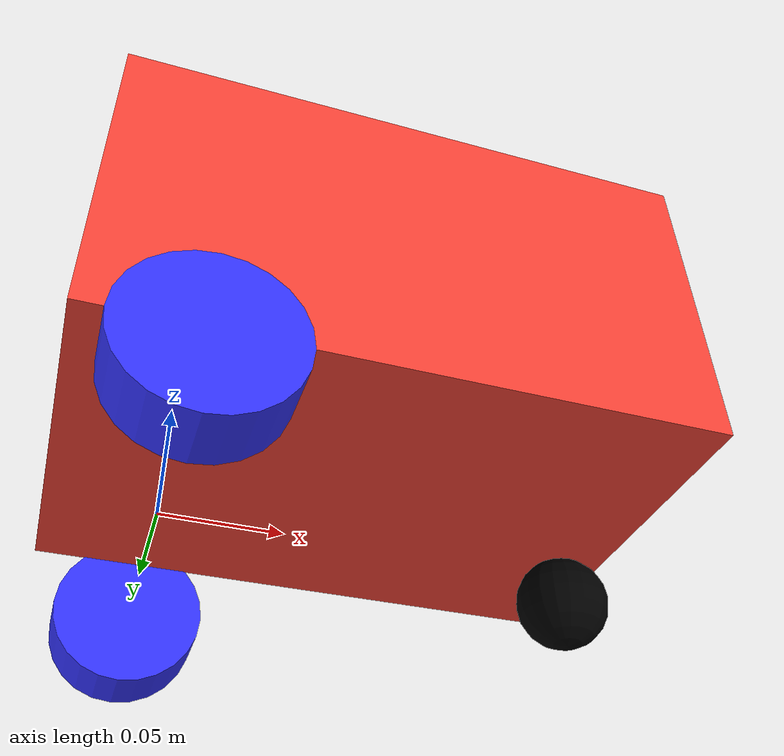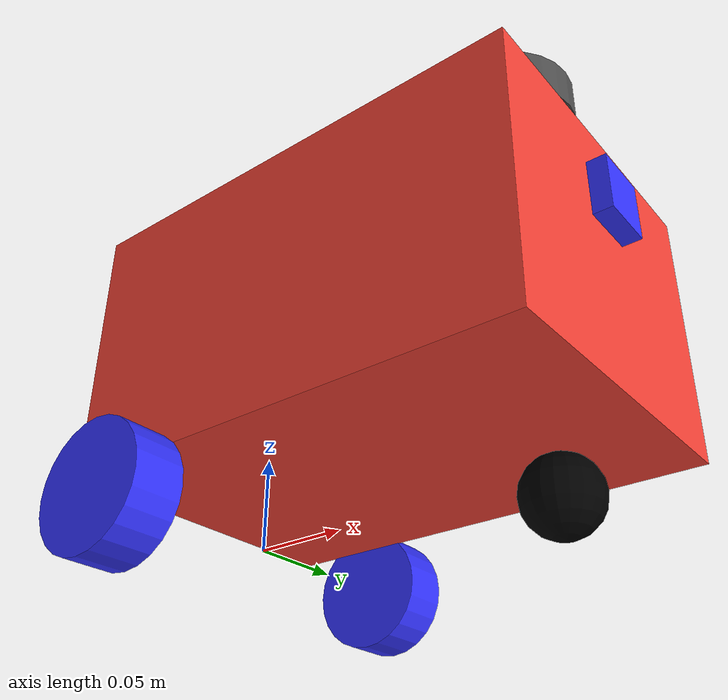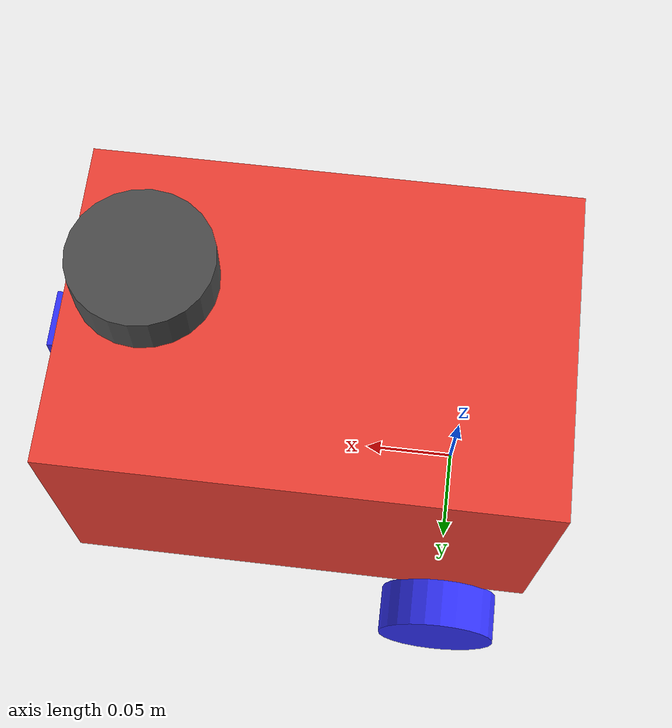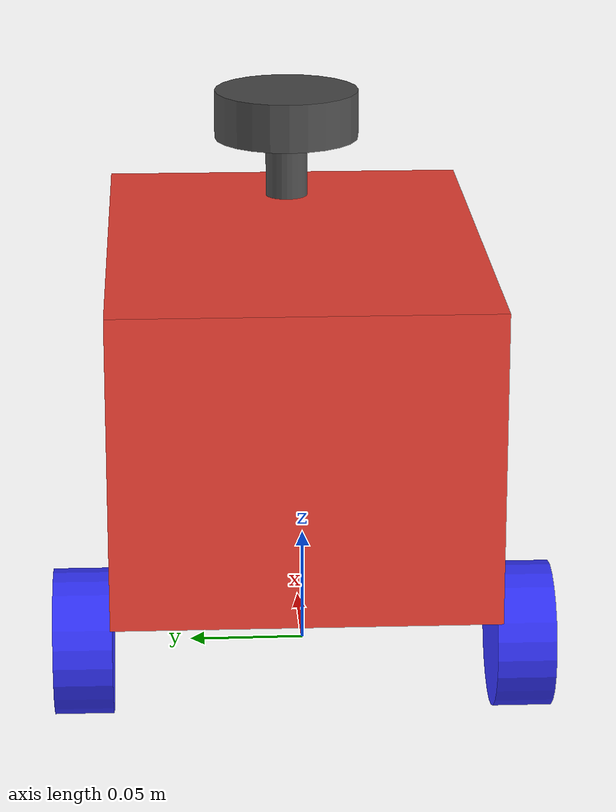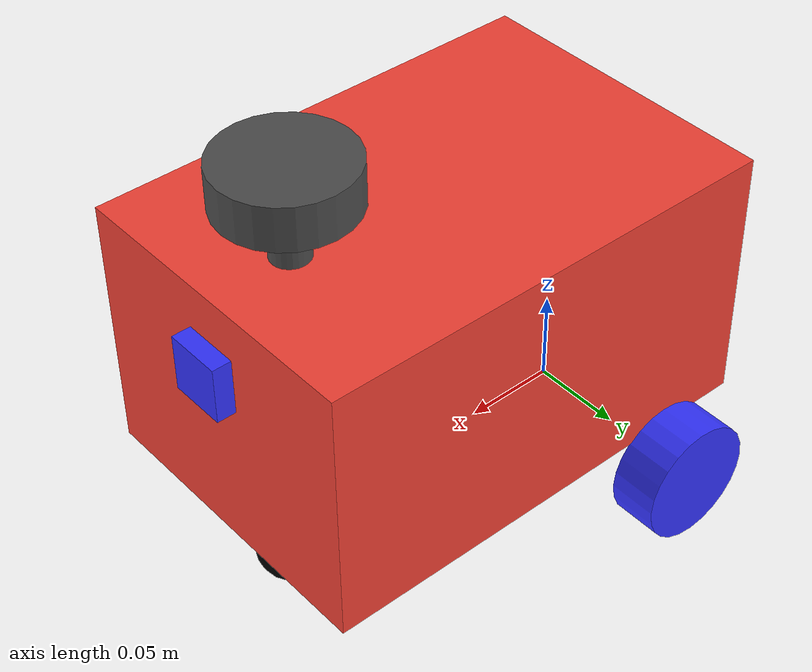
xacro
<?xml version="1.0"?>
<robot xmlns:xacro="http://www.ros.org/wiki/xacro" name="differential_robot">
    <xacro:include filename="robot_description.xacro"/>
    <xacro:include filename="ros2_control.xacro"/>
    <xacro:include filename="lidar_sensor.xacro"/>
    <xacro:include filename="camera_sensor.xacro"/>
</robot>

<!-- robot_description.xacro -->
<robot xmlns:xacro="http://www.ros.org/wiki/xacro">
<!--setting material properties which will be used later-->
<xacro:include filename="inertia.xacro"/>
<!-- Import the wheel macro -->
<xacro:include filename="$(find diff_drive_robot)/robot_urdf_description/wheel_macro.xacro"/>

<!-- Define chassisproperties -->
<xacro:property name="chassis_length" value="0.25"/>
<xacro:property name="chassis_width" value="0.17"/>
<xacro:property name="chassis_height" value="0.14"/>
<xacro:property name="chassis_mass" value="0.7"/>
<xacro:property name="chassis_offset_x" value="0.045"/> <!-- relative base link-->
<xacro:property name= "chassis_offset_z" value= "0.023"/> <!-- relative base link-->
<!--  wheel properties -->
<xacro:property name="driven_wheel_thickness" value="0.026"/>
<xacro:property name="driven_wheel_radius" value="0.0325"/>
<xacro:property name="driven_wheel_mass" value="0.02"/> <!--change with actual mass -->
<xacro:property name="driven_wheel_offset_y" value ="0.0975"/> <!-- relative to base link-->
<!--  castor wheel properties -->
<xacro:property name="castor_wheel_thickness" value="0.022"/> <!--used for cylinderical castor wheel-->
<xacro:property name="castor_wheel_radius" value="0.019"/>
<xacro:property name="castor_wheel_mass" value="0.01"/> <!--change with actual mass -->
<xacro:property name= "castor_wheel_offset_x" value="0.215"/>
<!-- relative to chassis-->
<xacro:property name= "castor_wheel_offset_z" value="${-0.035}"/> <!-- relative to chassis-->

<!--constants-->
<xacro:property name="PI" value="3.14159"/>

<!-- setting material colors-->

<material name="White">
    <color rgba="1 1 1 1"/>
</material>
<material name="Orange">
    <color rgba="1 0.3 0.1 1"/>
</material>
<material name="Blue">
    <color rgba="0.2 0.2 1 1"/>
</material>
<material name="Black">
    <color rgba="0 0 0 1"/>
</material>
<material name="Brown">
    <color rgba="${222/255} ${207/255} ${195/255} 1.0"/>
</material>
<material name="Red">
    <color rgba="0.96 0.26 0.21 1.0"/>
</material>

<material name="Dark">
    <color rgba="0.3 0.3 0.3 1.0"/>
</material>

<material name="light_black">
    <color rgba="0.4 0.4 0.4 1.0"/>
</material>
<material name="green">
    <color rgba="0.0 0.8 0.0 1.0"/>
  </material>

  <material name="grey">
    <color rgba="0.5 0.5 0.5 1.0"/>
  </material>

<!--setting up the base link-->
<link name="base_link">
</link>

<!-- adding base foot print link for simultanuous localization and mapping-->
<link name="base_footprint">
</link>

<joint name ="base_footprint_joint" type="fixed">
    <parent link="base_link"/>
    <child link="base_footprint"/>
    <origin xyz="0 0 0" rpy="0 0 0"/>
</joint>

<!--##################### robot chassis link ##################-->

<link name="chassis_link">
    <visual>
        <origin xyz="${chassis_length/2} 0 ${chassis_height/2}"/> <!-- this is relative to chassis link-->
        <geometry>
            <box size="${chassis_length} ${chassis_width} ${chassis_height}"/>
        </geometry>
        <material name="Red"/>
    </visual>
    <collision>
        <origin xyz="${chassis_length/2} 0 ${chassis_height/2}"/>
        <geometry>
            <box size="${chassis_length} ${chassis_width} ${chassis_height}"/>
        </geometry>
    </collision>
    <xacro:chassis_inertia mass="${chassis_mass}" x="${chassis_length}" y="${chassis_width}" z="${chassis_height}">
        <origin xyz="${chassis_length/2} 0 ${chassis_height/2}" rpy="0 0 0"/>
    </xacro:chassis_inertia>
</link>

<joint name="chassis_joint" type="fixed">
    <parent link="base_link"/>
    <child link="chassis_link"/>
    <origin xyz="${-chassis_offset_x} 0 ${chassis_offset_z}"/> <!-- change to wheel x and z offset after measurement for real robot-->
</joint>
 <!--adding gazebo reference for displaying the exact color of the robot-->
<gazebo reference="chassis_link">
    <material>Gazebo/Red</material>
</gazebo>

<!-- Use the macro for left and right wheels -->
<xacro:wheel_link
    wheel_name="left_wheel"
    wheel_radius ="${driven_wheel_radius}"
    wheel_length ="${driven_wheel_thickness}"
    wheel_mass="${driven_wheel_mass}"
    y_offset="${driven_wheel_offset_y}"
    axis_direction="-${PI/2}"
    axis_of_rotation = "1" /> <!-- Indicates rotation of the wheels along the Z axis-->

<xacro:wheel_link
    wheel_name="right_wheel"
    wheel_radius="${driven_wheel_radius}"
    wheel_length="${driven_wheel_thickness}"
    wheel_mass="${driven_wheel_mass}"
    y_offset="-${driven_wheel_offset_y}"
    axis_direction="${PI/2}"
    axis_of_rotation = "-1" /> <!-- Indicates rotation of the wheels along the Z axis-->

<!-- caster wheel link-->
<link name="castor_wheel">
    <visual>
        <geometry>
            <sphere radius="${castor_wheel_radius}"/>
        </geometry>
        <material name="Black"/>
    </visual>
    <collision>
        <geometry>
            <sphere radius="${castor_wheel_radius}"/>
        </geometry>
    </collision>
    <xacro:inertia_of_sphere mass="${castor_wheel_mass}" radius="${castor_wheel_radius}">
        <origin xyz="0 0 0" rpy="0 0 0"/>
    </xacro:inertia_of_sphere>
</link>

<gazebo reference="castor_wheel">
    <material>Gazebo/Black</material>
    <mu1 value="0.001"/>
    <mu2 value="0.001"/>
</gazebo>

<joint name="castor_wheel_joint" type="fixed">
    <parent link="chassis_link"/>
    <child link="castor_wheel"/>
    <origin xyz="${castor_wheel_offset_x} 0 ${castor_wheel_offset_z}"/>
</joint>

</robot>

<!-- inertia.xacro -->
<robot xmlns:xacro="http://www.ros.org/wiki/xacro">

    <!-- Specify some standard inertial calculations https://en.wikipedia.org/wiki/List_of_moments_of_inertia -->
    <!-- These make use of xacro's mathematical functionality -->
<xacro:macro name="inertia_of_sphere" params="mass radius *origin">
    <inertial>
        <xacro:insert_block name="origin"/>
        <mass value="${mass}"/>
        <inertia ixx="${(2.0/5.0) * mass * (radius * radius)}" ixy="0.0" ixz="0.0"
                 iyy="${(2.0/5.0) * mass * (radius * radius)}" iyz="0.0"
                 izz="${(2.0/5.0) * mass * (radius * radius)}"/>
    </inertial>
</xacro:macro>

<xacro:macro name="chassis_inertia" params="mass x y z *origin">
    <inertial>
        <xacro:insert_block name="origin"/>
        <mass value="${mass}"/>
        <inertia ixx="${(1.0/12.0) * mass * (y * y + z * z)}" ixy="0.0" ixz="0.0"
                 iyy="${(1.0/12.0) * mass * (x * x + z * z)}" iyz="0.0"
                 izz="${(1.0/12.0) * mass * (x * x + y * y)}"/>
    </inertial>
</xacro:macro>

<xacro:macro name="inertia_of_cylinder" params="mass length radius *origin">
    <inertial>
        <xacro:insert_block name="origin"/>
        <mass value="${mass}"/>
        <inertia ixx="${(1.0/12.0) * mass * (3 * radius * radius + length * length)}" ixy="0.0" ixz="0.0"
                 iyy="${(1.0/12.0) * mass * (3 * radius * radius + length * length)}" iyz="0.0"
                 izz="${(1.0/2.0) * mass * (radius * radius)}"/>
    </inertial>
</xacro:macro>

</robot>

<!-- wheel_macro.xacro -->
<robot xmlns:xacro="http://www.ros.org/wiki/xacro">

    <!-- Define wheel macro -->
    <xacro:macro name="wheel_link" params="wheel_name wheel_radius wheel_length wheel_mass y_offset axis_direction axis_of_rotation">
        <link name="${wheel_name}">
            <visual>
                <geometry>
                    <cylinder radius="${wheel_radius}" length="${wheel_length}"/>
                </geometry>
                <material name="Blue"/>
            </visual>
            <collision>
                <geometry>
                    <cylinder radius="${wheel_radius}" length="${wheel_length}"/>
                </geometry>
            </collision>
            <xacro:inertia_of_cylinder mass="${wheel_mass}" radius="${wheel_radius}" length="${wheel_length}">
                <origin xyz="0 0 0" rpy="0 0 0"/>
            </xacro:inertia_of_cylinder>
        </link>

        <gazebo reference="${wheel_name}">
            <material>Gazebo/Blue</material>
            <mu1 value="0.5"/>
            <mu2 value="0.5"/>
        </gazebo>

        <joint name="${wheel_name}_joint" type="continuous">
            <parent link="base_link"/>
            <child link="${wheel_name}"/>
            <origin xyz="0 ${y_offset} 0" rpy="${axis_direction} 0 0"/>
            <axis xyz="0 0 ${axis_of_rotation}"/>
        </joint>
    </xacro:macro>

</robot>

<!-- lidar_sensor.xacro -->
<!-- http://wiki.ros.org/urdf/XML/link -->
<robot xmlns:xacro="http://www.ros.org/wiki/xacro">

<!-- Dimensions for the LiDAR sensor-->
<xacro:property name="lidar_offset_x" value="0.16"/> <!-- relative to base link-->
<xacro:property name="lidar_offset_chassis_z" value="0.18"/> <!-- relative to chassis-->
<xacro:property name="lidar_offset_z" value="${lidar_offset_chassis_z + chassis_offset_z}"/> <!-- relative to base link-->
<xacro:property name= "lidar_radius" value="0.0345"/>
<xacro:property name= "lidar_height" value="0.023"/>
<xacro:property name= "lidar_spacer_height" value="0.1"/>
<xacro:property name= "lidar_spacer_radius" value= "0.01"/>

<link name="lidar_link">
   <visual>
        <geometry>
            <cylinder radius="${lidar_radius}" length="${lidar_height}"/>
        </geometry>
        <material name="Dark"/>
    </visual>

<!-- visual for LiDAR spacer -->
    <visual>
        <origin xyz="0 0 -${lidar_height/2 + lidar_spacer_height/2}"/>
        <geometry>
            <cylinder radius ="${lidar_spacer_radius}" length= "${lidar_spacer_height}"/>
        </geometry>
        <material name="Dark"/>
    </visual>
    <xacro:inertia_of_cylinder mass="0.06" radius="${lidar_radius}" length="${lidar_height}">
        <origin xyz="0 0 0" rpy="0 0 0"/>
    </xacro:inertia_of_cylinder>
</link>

<joint name="lidar_link_joint" type="fixed">
    <parent link="base_link"/>
    <child link="lidar_link"/>
    <origin xyz="${lidar_offset_x} 0 ${lidar_offset_z}" rpy="0 0 0"/>
    <axis xyz="0 0 0"/>
</joint>

<gazebo reference="lidar_link"> <!--changed lidar_link to lidar_link-->
    <material name="Dark"/>
    <sensor name="lidar_link" type="gpu_lidar">
        <pose> 0 0 0 0 0 0 </pose>
        <visualize>true</visualize>
        <always_on>true</always_on>
        <update_rate>10</update_rate>

        <lidar>
            <scan>
                <horizontal>
                    <samples>360</samples>
                    <min_angle>-3.14</min_angle>
                    <max_angle>3.14</max_angle>
                </horizontal>
            </scan>

                <range>
                    <min>0.1</min>
                    <max>12</max>
                </range>
        </lidar>
        <gz_frame_id>lidar_link</gz_frame_id>
        <topic>scan</topic>
    </sensor>
</gazebo>

</robot>

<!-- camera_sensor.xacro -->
<robot xmlns:xacro="http://www.ros.org/wiki/xacro" >

    <link name="camera_link">
        <visual>
            <geometry>
                <box size="0.010 0.03 0.03"/>
            </geometry>
            <material name="Blue"/>
        </visual>
    </link>

    <joint name="camera_joint" type="fixed">
        <parent link="chassis_link"/>
        <child link="camera_link"/>
        <origin xyz="0.255 0 0.1" rpy="0 0 0"/>
    </joint>

    <joint name="camera_optical_joint" type="fixed">
        <parent link="camera_link"/>
        <child link="camera_link_optical"/>
        <origin xyz="0 0 0" rpy="${-pi/2} 0 ${-pi/2}"/>
    </joint>

    <link name="camera_link_optical"></link>

    <gazebo reference="camera_link">
        <material name ="Blue"/>

        <sensor name="rgb_camera" type="camera">
            <pose> 0 0 0 0 0 0 </pose>
            <always_on>true</always_on>
            <visualize>true</visualize>
            <update_rate>10</update_rate>

            <camera>
                <horizontal_fov>1.089</horizontal_fov>

                <image>
                    <format>R8G8B8</format>
                    <width>640</width>
                    <height>480</height>
                </image>

                <clip>
                    <near>0.05</near>
                    <far>8.0</far>
                </clip>

            </camera>
            <topic>camera/image_raw</topic>
            <gz_frame_id>camera_link_optical</gz_frame_id> <!-- check out if camera works without this tag-->
        </sensor>
    </gazebo>

</robot>
